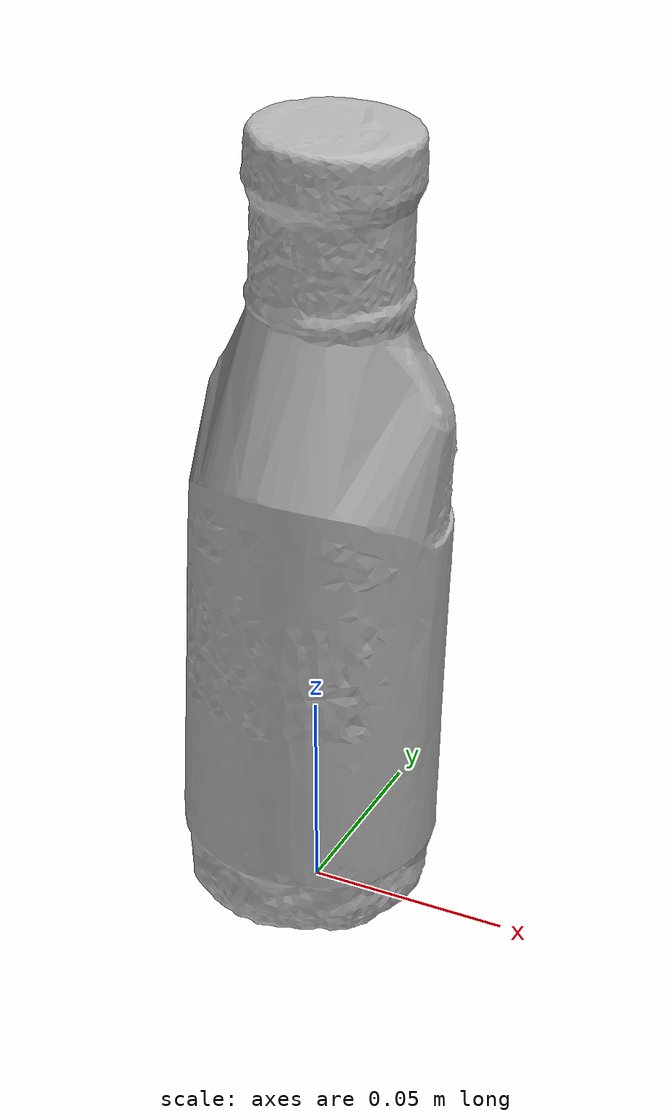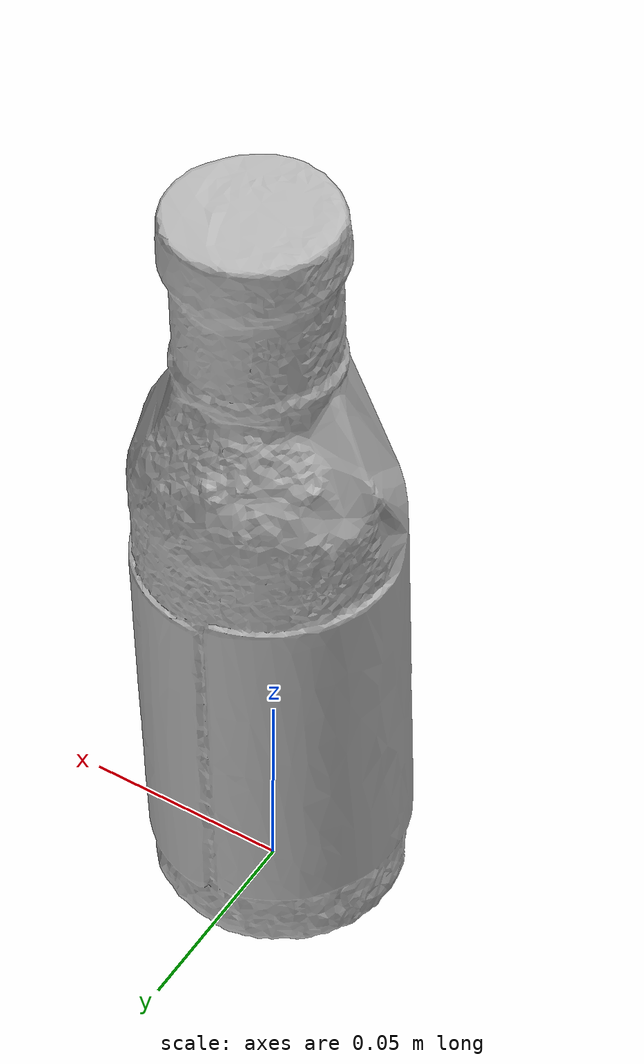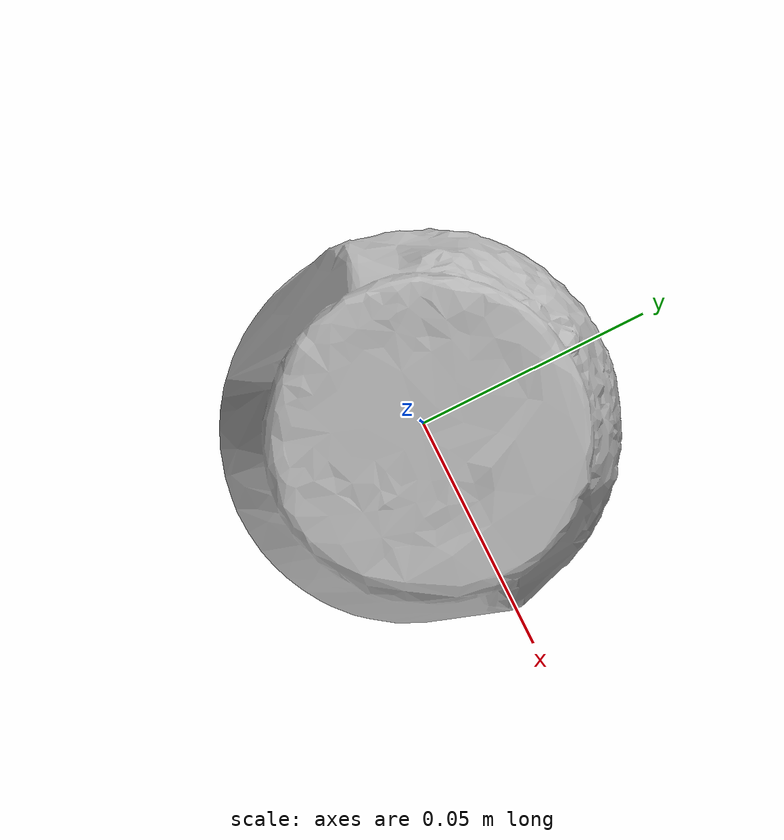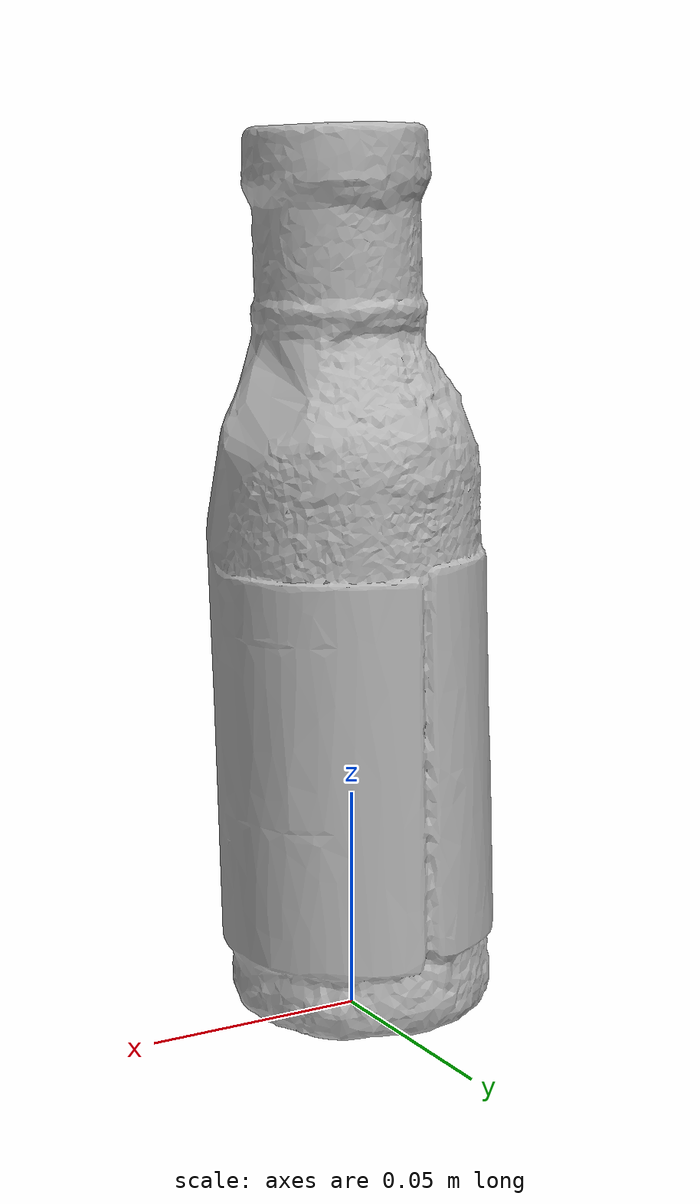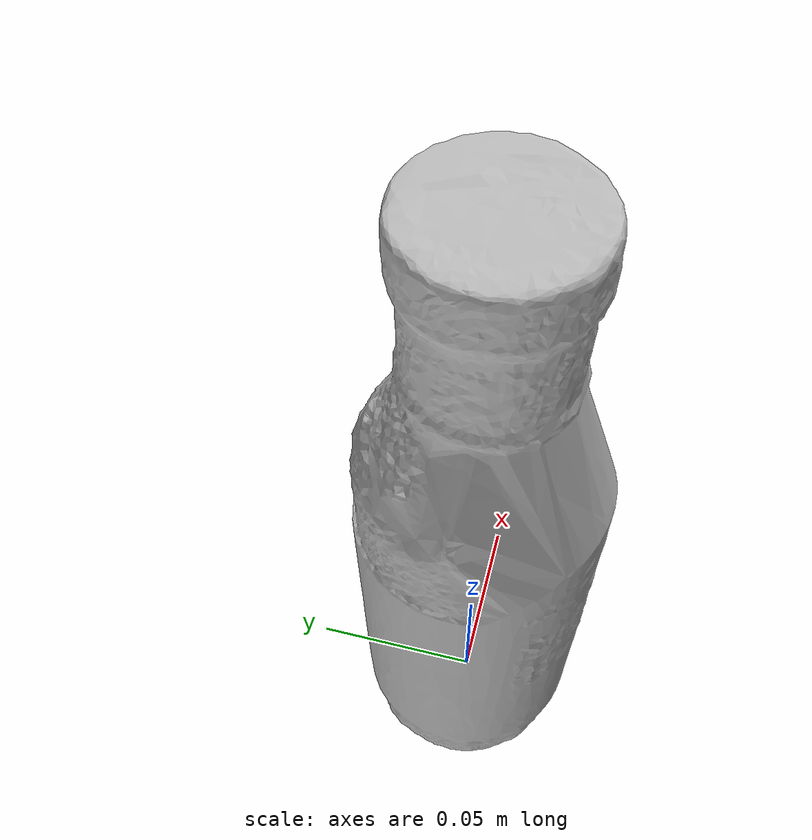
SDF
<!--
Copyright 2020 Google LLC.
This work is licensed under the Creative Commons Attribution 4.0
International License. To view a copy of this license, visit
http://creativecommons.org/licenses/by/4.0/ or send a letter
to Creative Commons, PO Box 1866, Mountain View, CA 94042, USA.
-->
<?xml version="1.0" ?>
<sdf version="1.6">
  <model name="Weston_No_33_Signature_Sausage_Tonic_12_fl_oz">
    <link name="link_0">
      <visual name="visual">
        <geometry>
          <mesh>
            <uri>meshes/model.obj</uri>
          </mesh>
        </geometry>
      </visual>
      <collision name="collision_0">
        <geometry>
          <mesh>
            <uri>meshes/model.obj</uri>
          </mesh>
        </geometry>
      </collision>
    </link>
  </model>
</sdf>
